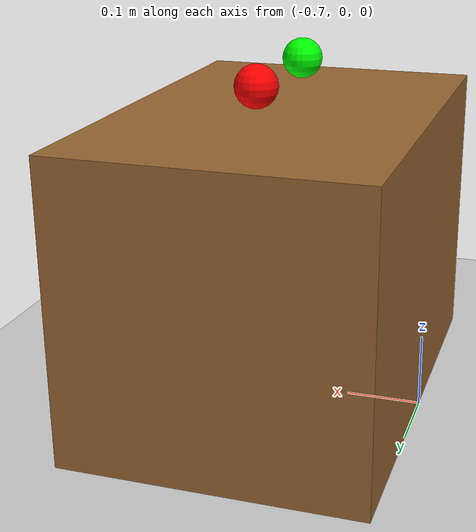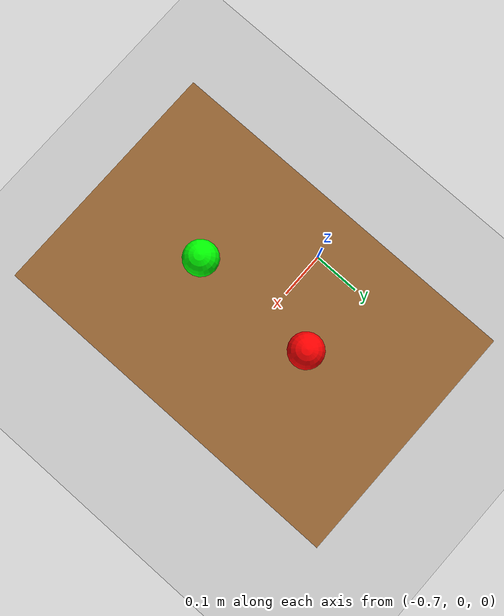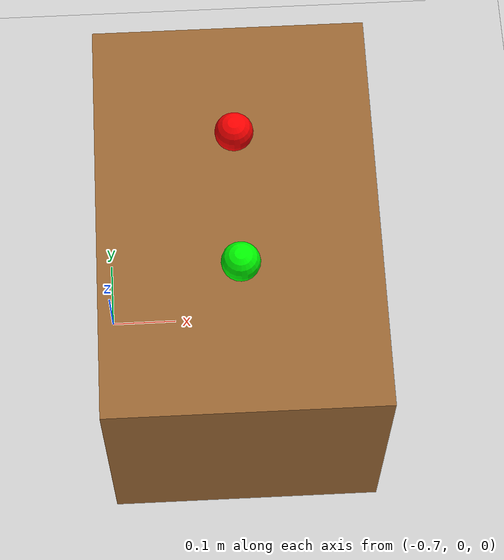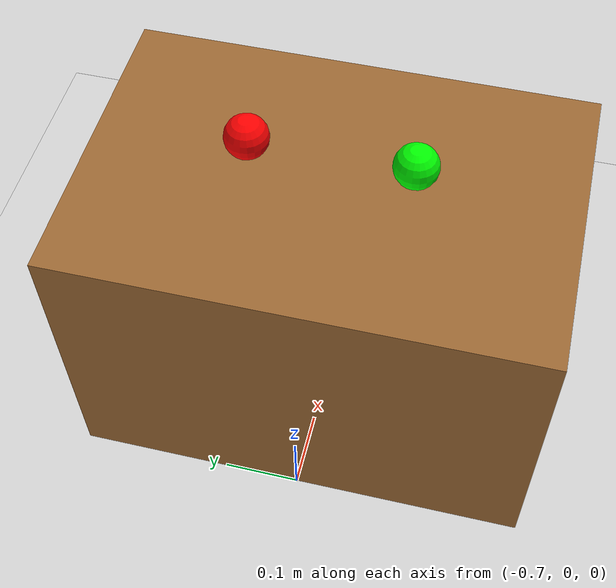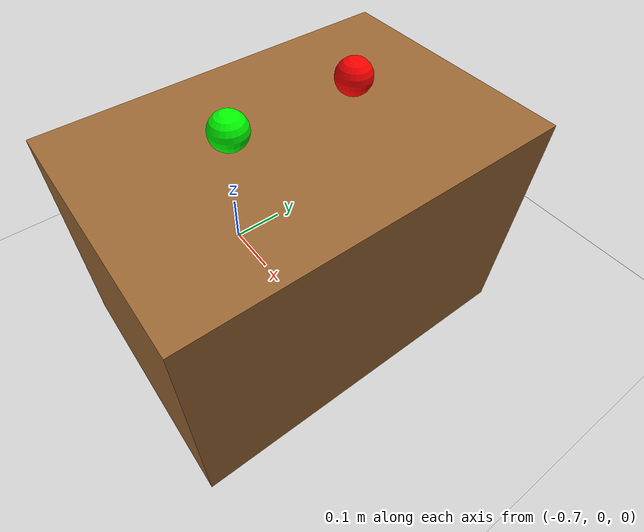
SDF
<?xml version="1.0" ?>
<sdf version="1.8">
  <world name="default">
    <!-- Required plugins for modern Gazebo -->
    <plugin filename="ignition-gazebo-physics-system" name="ignition::gazebo::systems::Physics"/>
    <plugin filename="ignition-gazebo-user-commands-system" name="ignition::gazebo::systems::UserCommands"/>
    <plugin filename="ignition-gazebo-scene-broadcaster-system" name="ignition::gazebo::systems::SceneBroadcaster"/>

    <!-- Contact plugin so the gripper fingers can interact with the apples -->
    <plugin filename="ignition-gazebo-contact-system" name="ignition::gazebo::systems::Contact"/>

    <light type="directional" name="sun">
      <cast_shadows>true</cast_shadows>
      <pose>0 0 10 0 0 0</pose>
      <diffuse>0.8 0.8 0.8 1</diffuse>
      <specular>0.2 0.2 0.2 1</specular>
      <attenuation>
        <range>1000</range>
        <constant>0.9</constant>
        <linear>0.01</linear>
        <quadratic>0.001</quadratic>
      </attenuation>
      <direction>-0.5 0.1 -0.9</direction>
    </light>

    <model name="ground_plane">
      <static>true</static>
      <link name="link">
        <collision name="collision">
          <geometry>
            <plane>
              <normal>0 0 1</normal>
              <size>100 100</size>
            </plane>
          </geometry>
        </collision>
        <visual name="visual">
          <geometry>
            <plane>
              <normal>0 0 1</normal>
              <size>100 100</size>
            </plane>
          </geometry>
          <material>
            <ambient>0.8 0.8 0.8 1</ambient>
            <diffuse>0.8 0.8 0.8 1</diffuse>
            <specular>0.8 0.8 0.8 1</specular>
          </material>
        </visual>
      </link>
    </model>

    <!-- Sorting table -->
    <model name="sorting_table">
      <static>true</static>
      <pose>-0.5 0 0.2 0 0 0</pose>
      <link name="link">
        <collision name="collision">
          <geometry><box><size>0.4 0.6 0.4</size></box></geometry>
          <surface>
            <friction>
              <ode>
                <mu>0.8</mu>
                <mu2>0.8</mu2>
              </ode>
            </friction>
          </surface>
        </collision>
        <visual name="visual">
          <geometry><box><size>0.4 0.6 0.4</size></box></geometry>
          <material>
            <ambient>0.6 0.4 0.2 1</ambient>
            <diffuse>0.6 0.4 0.2 1</diffuse>
          </material>
        </visual>
      </link>
    </model>

    <!-- Red Apple -->
    <model name="red_apple">
      <pose>-0.5 0.1 0.45 0 0 0</pose>
      <link name="link">
        <inertial>
          <mass>0.15</mass>
          <inertia>
            <ixx>0.0001</ixx><ixy>0.0</ixy><ixz>0.0</ixz>
            <iyy>0.0001</iyy><iyz>0.0</iyz><izz>0.0001</izz>
          </inertia>
        </inertial>

        <!-- Relaxed damping so it can actually roll and fall -->
        <linear_damping>0.05</linear_damping>
        <angular_damping>0.1</angular_damping>

        <collision name="collision">
          <geometry><sphere><radius>0.0275</radius></sphere></geometry>
          <!-- Surface friction to prevent infinite rolling on the table -->
          <surface>
            <friction>
              <ode>
                <mu>0.5</mu>
                <mu2>0.5</mu2>
              </ode>
            </friction>
          </surface>
        </collision>
        <visual name="visual">
          <geometry><sphere><radius>0.0275</radius></sphere></geometry>
          <material>
            <ambient>1 0 0 1</ambient>
            <diffuse>1 0 0 1</diffuse>
          </material>
        </visual>
      </link>
    </model>

    <!-- Green Apple -->
    <model name="green_apple">
      <pose>-0.5 -0.1 0.45 0 0 0</pose>
      <link name="link">
        <inertial>
          <mass>0.15</mass>
          <inertia>
            <ixx>0.0001</ixx><ixy>0.0</ixy><ixz>0.0</ixz>
            <iyy>0.0001</iyy><iyz>0.0</iyz><izz>0.0001</izz>
          </inertia>
        </inertial>

        <!-- Relaxed damping so it can actually roll and fall -->
        <linear_damping>0.05</linear_damping>
        <angular_damping>0.1</angular_damping>

        <collision name="collision">
          <geometry><sphere><radius>0.0275</radius></sphere></geometry>
          <!-- Surface friction to prevent infinite rolling on the table -->
          <surface>
            <friction>
              <ode>
                <mu>0.5</mu>
                <mu2>0.5</mu2>
              </ode>
            </friction>
          </surface>
        </collision>
        <visual name="visual">
          <geometry><sphere><radius>0.0275</radius></sphere></geometry>
          <material>
            <ambient>0 1 0 1</ambient>
            <diffuse>0 1 0 1</diffuse>
          </material>
        </visual>
      </link>
    </model>
  </world>
</sdf>
